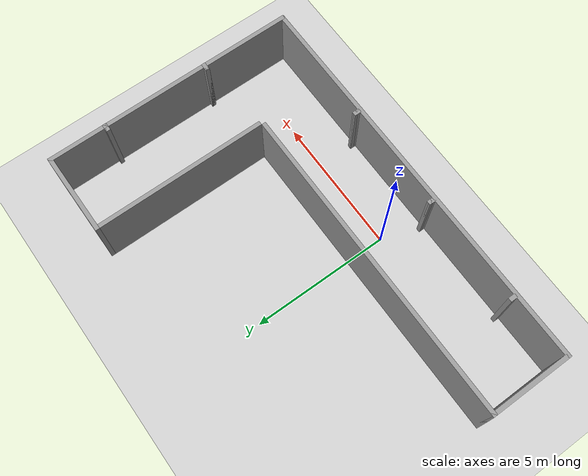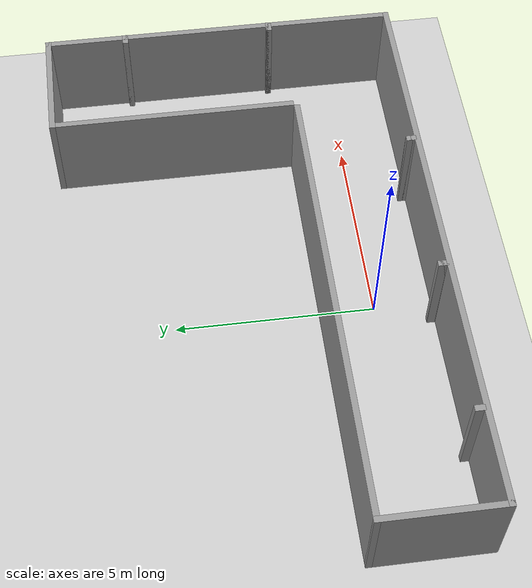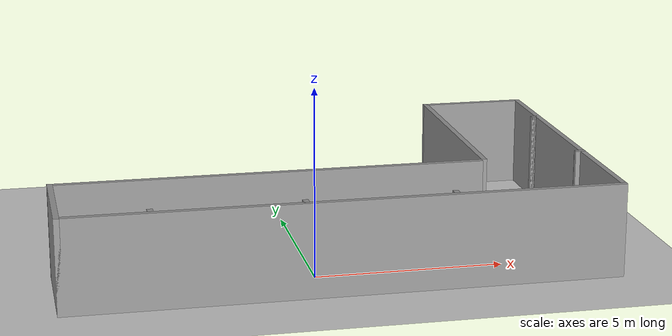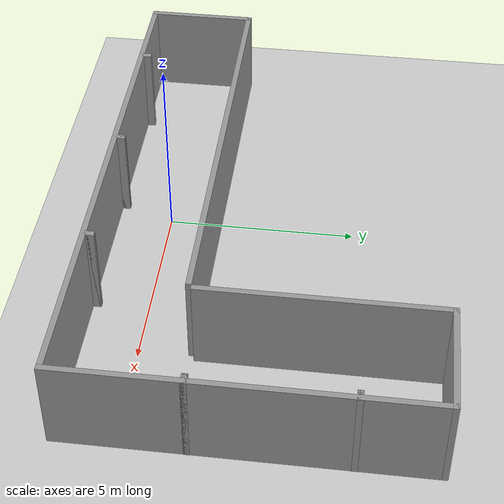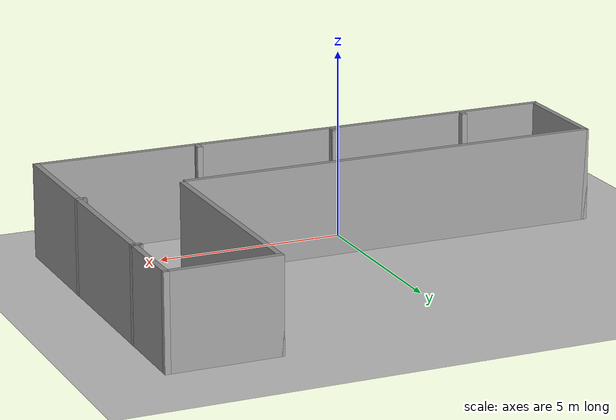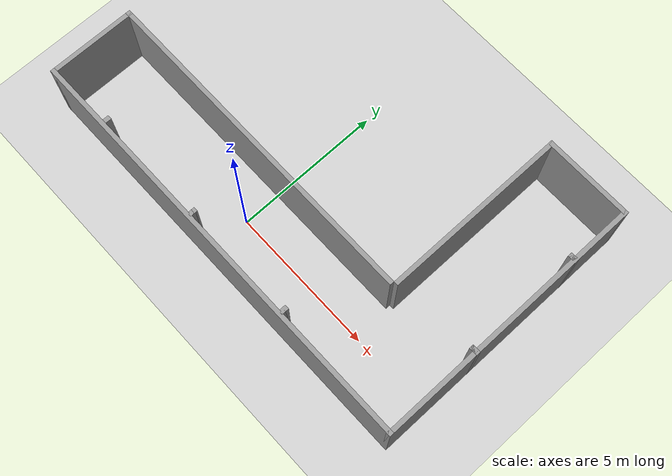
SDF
<sdf version="1.7">
 <world name="default">
  <light name="sun" type="directional">
   <pose>0 0 10 0 -0 0</pose>
   <diffuse>0.8 0.8 0.8 1</diffuse>
   <specular>0.2 0.2 0.2 1</specular>
   <attenuation>
    <range>1000</range>
    <constant>0.9</constant>
    <linear>0.01</linear>
    <quadratic>0.001</quadratic>
   </attenuation>
   <direction>-0.5 0.1 -0.9</direction>
   <spot><inner_angle>0</inner_angle><outer_angle>0</outer_angle><falloff>0</falloff></spot>
  </light>
  <model name="ground_plane">
   <static>1</static>
   <link name="link">
    <collision name="collision">
     <geometry><plane><normal>0 0 1</normal><size>100 100</size></plane></geometry>
     <surface>
      <contact><collide_bitmask>65535</collide_bitmask></contact>
      <friction><ode><mu>100</mu><mu2>50</mu2></ode></friction>
     </surface>
    </collision>
    <visual name="visual">
     <cast_shadows>0</cast_shadows>
     <geometry><plane><normal>0 0 1</normal><size>100 100</size></plane></geometry>
     <material>
      <script><uri>file://media/materials/scripts/gazebo.material</uri><name>Gazebo/Grey</name></script>
     </material>
    </visual>
   </link>
  </model>
  <gravity>0 0 -9.8</gravity>
  <magnetic_field>6e-06 2.3e-05 -4.2e-05</magnetic_field>
  <atmosphere type="adiabatic"/>
  <physics type="ode">
   <max_step_size>0.001</max_step_size>
   <real_time_factor>1</real_time_factor>
   <real_time_update_rate>1000</real_time_update_rate>
  </physics>
  <scene><ambient>0.4 0.4 0.4 1</ambient><background>0.7 0.7 0.7 1</background><shadows>1</shadows></scene>
  <spherical_coordinates>
   <surface_model>EARTH_WGS84</surface_model>
   <latitude_deg>0</latitude_deg>
   <longitude_deg>0</longitude_deg>
   <elevation>0</elevation>
   <heading_deg>0</heading_deg>
  </spherical_coordinates>
  <model name="hanhlang2">
   <pose>0.572568 3.03052 0 0 -0 0</pose>
   <link name="Wall_10">
    <collision name="Wall_10_Collision">
     <geometry><box><size>14.5 0.15 2.5</size></box></geometry>
     <pose>0 0 1.25 0 -0 0</pose>
    </collision>
    <visual name="Wall_10_Visual">
     <pose>0 0 1.25 0 -0 0</pose>
     <geometry><box><size>14.5 0.15 2.5</size></box></geometry>
     <material>
      <script><uri>file://media/materials/scripts/gazebo.material</uri><name>Gazebo/Grey</name></script>
      <ambient>1 1 1 1</ambient>
     </material>
     <meta><layer>0</layer></meta>
    </visual>
    <pose>-0 -4.55 0 0 -0 0</pose>
   </link>
   <link name="Wall_14">
    <collision name="Wall_14_Collision">
     <geometry><box><size>9.25 0.15 2.5</size></box></geometry>
     <pose>0 0 1.25 0 -0 0</pose>
    </collision>
    <visual name="Wall_14_Visual">
     <pose>0 0 1.25 0 -0 0</pose>
     <geometry><box><size>9.25 0.15 2.5</size></box></geometry>
     <material>
      <script><uri>file://media/materials/scripts/gazebo.material</uri><name>Gazebo/Grey</name></script>
      <ambient>1 1 1 1</ambient>
     </material>
     <meta><layer>0</layer></meta>
    </visual>
    <pose>7.175 0 0 0 -0 1.5708</pose>
   </link>
   <link name="Wall_15">
    <collision name="Wall_15_Collision">
     <geometry><box><size>3 0.15 2.5</size></box></geometry>
     <pose>0 0 1.25 0 -0 0</pose>
    </collision>
    <visual name="Wall_15_Visual">
     <pose>0 0 1.25 0 -0 0</pose>
     <geometry><box><size>3 0.15 2.5</size></box></geometry>
     <material>
      <script><uri>file://media/materials/scripts/gazebo.material</uri><name>Gazebo/Grey</name></script>
      <ambient>1 1 1 1</ambient>
     </material>
     <meta><layer>0</layer></meta>
    </visual>
    <pose>5.75 4.55 0 0 -0 3.14159</pose>
   </link>
   <link name="Wall_16">
    <collision name="Wall_16_Collision">
     <geometry><box><size>6.25 0.15 2.5</size></box></geometry>
     <pose>0 0 1.25 0 -0 0</pose>
    </collision>
    <visual name="Wall_16_Visual">
     <pose>0 0 1.25 0 -0 0</pose>
     <geometry><box><size>6.25 0.15 2.5</size></box></geometry>
     <material>
      <script><uri>file://media/materials/scripts/gazebo.material</uri><name>Gazebo/Grey</name></script>
      <ambient>1 1 1 1</ambient>
     </material>
     <meta><layer>0</layer></meta>
    </visual>
    <pose>4.325 1.5 0 0 -0 -1.5708</pose>
   </link>
   <link name="Wall_20">
    <collision name="Wall_20_Collision">
     <geometry><box><size>11.5 0.15 2.5</size></box></geometry>
     <pose>0 0 1.25 0 -0 0</pose>
    </collision>
    <visual name="Wall_20_Visual">
     <pose>0 0 1.25 0 -0 0</pose>
     <geometry><box><size>11.5 0.15 2.5</size></box></geometry>
     <material>
      <script><uri>file://media/materials/scripts/gazebo.material</uri><name>Gazebo/Grey</name></script>
      <ambient>1 1 1 1</ambient>
     </material>
     <meta><layer>0</layer></meta>
    </visual>
    <pose>-1.5 -1.7 0 0 -0 0</pose>
   </link>
   <link name="Wall_9">
    <collision name="Wall_9_Collision">
     <geometry><box><size>3 0.15 2.5</size></box></geometry>
     <pose>0 0 1.25 0 -0 0</pose>
    </collision>
    <visual name="Wall_9_Visual">
     <pose>0 0 1.25 0 -0 0</pose>
     <geometry><box><size>3 0.15 2.5</size></box></geometry>
     <material>
      <script><uri>file://media/materials/scripts/gazebo.material</uri><name>Gazebo/Grey</name></script>
      <ambient>1 1 1 1</ambient>
     </material>
     <meta><layer>0</layer></meta>
    </visual>
    <pose>-7.175 -3.125 0 0 -0 -1.5708</pose>
   </link>
   <static>1</static>
  </model>
  <model name="door2">
   <pose>1.71053 2.06353 0 0 -0 0</pose>
   <link name="Wall_100">
    <collision name="Wall_100_Collision">
     <geometry><box><size>0.285179 0.15 2.5</size></box></geometry>
     <pose>0 0 1.25 0 -0 0</pose>
    </collision>
    <visual name="Wall_100_Visual">
     <pose>0 0 1.25 0 -0 0</pose>
     <geometry><box><size>0.285179 0.15 2.5</size></box></geometry>
     <material>
      <script><uri>file://media/materials/scripts/gazebo.material</uri><name>Gazebo/Grey</name></script>
      <ambient>1 1 1 1</ambient>
     </material>
     <meta><layer>0</layer></meta>
    </visual>
    <pose>5.975 -0.375 0 0 -0 0</pose>
   </link>
   <link name="Wall_102">
    <collision name="Wall_102_Collision">
     <geometry><box><size>0.15 0.15 2.5</size></box></geometry>
     <pose>0 0 1.25 0 -0 0</pose>
    </collision>
    <visual name="Wall_102_Visual">
     <pose>0 0 1.25 0 -0 0</pose>
     <geometry><box><size>0.15 0.15 2.5</size></box></geometry>
     <material>
      <script><uri>file://media/materials/scripts/gazebo.material</uri><name>Gazebo/Grey</name></script>
      <ambient>1 1 1 1</ambient>
     </material>
     <meta><layer>0</layer></meta>
    </visual>
    <pose>6.04259 3.475 0 0 -0 0</pose>
   </link>
   <link name="Wall_103">
    <collision name="Wall_103_Collision">
     <geometry><box><size>0.285179 0.15 2.5</size></box></geometry>
     <pose>0 0 1.25 0 -0 0</pose>
    </collision>
    <visual name="Wall_103_Visual">
     <pose>0 0 1.25 0 -0 0</pose>
     <geometry><box><size>0.285179 0.15 2.5</size></box></geometry>
     <material>
      <script><uri>file://media/materials/scripts/gazebo.material</uri><name>Gazebo/Grey</name></script>
      <ambient>1 1 1 1</ambient>
     </material>
     <meta><layer>0</layer></meta>
    </visual>
    <pose>5.975 3.475 0 0 -0 3.14159</pose>
   </link>
   <link name="Wall_104">
    <collision name="Wall_104_Collision">
     <geometry><box><size>0.285179 0.15 2.5</size></box></geometry>
     <pose>0 0 1.25 0 -0 0</pose>
    </collision>
    <visual name="Wall_104_Visual">
     <pose>0 0 1.25 0 -0 0</pose>
     <geometry><box><size>0.285179 0.15 2.5</size></box></geometry>
     <material>
      <script><uri>file://media/materials/scripts/gazebo.material</uri><name>Gazebo/Grey</name></script>
      <ambient>1 1 1 1</ambient>
     </material>
     <meta><layer>0</layer></meta>
    </visual>
    <pose>5.975 3.475 0 0 -0 0</pose>
   </link>
   <link name="Wall_72">
    <collision name="Wall_72_Collision">
     <geometry><box><size>0.25 0.15 2.5</size></box></geometry>
     <pose>0 0 1.25 0 -0 0</pose>
    </collision>
    <visual name="Wall_72_Visual">
     <pose>0 0 1.25 0 -0 0</pose>
     <geometry><box><size>0.25 0.15 2.5</size></box></geometry>
     <material>
      <script><uri>file://media/materials/scripts/gazebo.material</uri><name>Gazebo/Grey</name></script>
      <ambient>1 1 1 1</ambient>
     </material>
     <meta><layer>0</layer></meta>
    </visual>
    <pose>-6.04259 -3.425 0 0 -0 -1.5708</pose>
   </link>
   <link name="Wall_77">
    <collision name="Wall_77_Collision">
     <geometry><box><size>0.25 0.15 2.5</size></box></geometry>
     <pose>0 0 1.25 0 -0 0</pose>
    </collision>
    <visual name="Wall_77_Visual">
     <pose>0 0 1.25 0 -0 0</pose>
     <geometry><box><size>0.25 0.15 2.5</size></box></geometry>
     <material>
      <script><uri>file://media/materials/scripts/gazebo.material</uri><name>Gazebo/Grey</name></script>
      <ambient>1 1 1 1</ambient>
     </material>
     <meta><layer>0</layer></meta>
    </visual>
    <pose>-2.19259 -3.425 0 0 -0 1.5708</pose>
   </link>
   <link name="Wall_78">
    <collision name="Wall_78_Collision">
     <geometry><box><size>0.25 0.15 2.5</size></box></geometry>
     <pose>0 0 1.25 0 -0 0</pose>
    </collision>
    <visual name="Wall_78_Visual">
     <pose>0 0 1.25 0 -0 0</pose>
     <geometry><box><size>0.25 0.15 2.5</size></box></geometry>
     <material>
      <script><uri>file://media/materials/scripts/gazebo.material</uri><name>Gazebo/Grey</name></script>
      <ambient>1 1 1 1</ambient>
     </material>
     <meta><layer>0</layer></meta>
    </visual>
    <pose>-2.19259 -3.425 0 0 -0 -1.5708</pose>
   </link>
   <link name="Wall_80">
    <collision name="Wall_80_Collision">
     <geometry><box><size>0.25 0.15 2.5</size></box></geometry>
     <pose>0 0 1.25 0 -0 0</pose>
    </collision>
    <visual name="Wall_80_Visual">
     <pose>0 0 1.25 0 -0 0</pose>
     <geometry><box><size>0.25 0.15 2.5</size></box></geometry>
     <material>
      <script><uri>file://media/materials/scripts/gazebo.material</uri><name>Gazebo/Grey</name></script>
      <ambient>1 1 1 1</ambient>
     </material>
     <meta><layer>0</layer></meta>
    </visual>
    <pose>1.65741 -3.425 0 0 -0 1.5708</pose>
   </link>
   <link name="Wall_81">
    <collision name="Wall_81_Collision">
     <geometry><box><size>0.25 0.15 2.5</size></box></geometry>
     <pose>0 0 1.25 0 -0 0</pose>
    </collision>
    <visual name="Wall_81_Visual">
     <pose>0 0 1.25 0 -0 0</pose>
     <geometry><box><size>0.25 0.15 2.5</size></box></geometry>
     <material>
      <script><uri>file://media/materials/scripts/gazebo.material</uri><name>Gazebo/Grey</name></script>
      <ambient>1 1 1 1</ambient>
     </material>
     <meta><layer>0</layer></meta>
    </visual>
    <pose>1.65741 -3.425 0 0 -0 -1.5708</pose>
   </link>
   <link name="Wall_99">
    <collision name="Wall_99_Collision">
     <geometry><box><size>0.285179 0.15 2.5</size></box></geometry>
     <pose>0 0 1.25 0 -0 0</pose>
    </collision>
    <visual name="Wall_99_Visual">
     <pose>0 0 1.25 0 -0 0</pose>
     <geometry><box><size>0.285179 0.15 2.5</size></box></geometry>
     <material>
      <script><uri>file://media/materials/scripts/gazebo.material</uri><name>Gazebo/Grey</name></script>
      <ambient>1 1 1 1</ambient>
     </material>
     <meta><layer>0</layer></meta>
    </visual>
    <pose>5.975 -0.375 0 0 -0 3.14159</pose>
   </link>
   <static>1</static>
  </model>
 </world>
</sdf>
